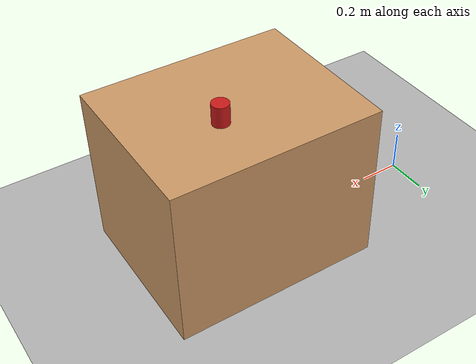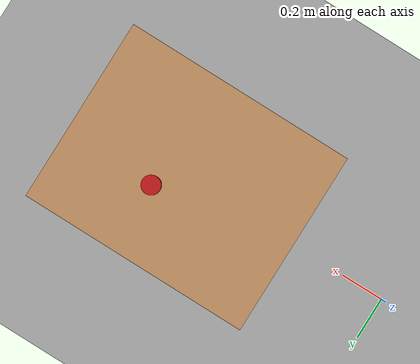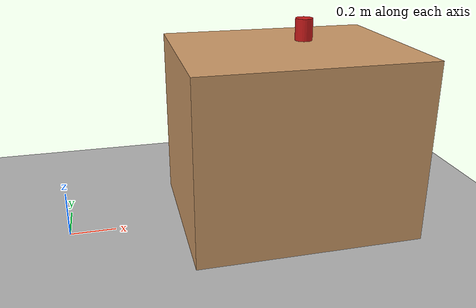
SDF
<?xml version="1.0" ?>
<sdf version="1.6">
  <world name="simple_world">
    <light name="sun" type="directional">
      <cast_shadows>1</cast_shadows>
      <pose>0 0 10 0 0 0</pose>
      <diffuse>0.8 0.8 0.8 1</diffuse>
      <specular>0.2 0.2 0.2 1</specular>
      <attenuation>
        <range>1000</range>
        <constant>0.9</constant>
        <linear>0.01</linear>
        <quadratic>0.001</quadratic>
      </attenuation>
      <direction>-0.6 0.4 -0.8</direction>
    </light>

    <model name="ground_plane">
      <static>true</static>
      <link name="link">
        <collision name="collision">
          <geometry>
            <plane>
              <normal>0 0 1</normal>
              <size>100 100</size>
            </plane>
          </geometry>
          <surface>
            <friction>
              <ode>
                <mu>1.0</mu>
                <mu2>1.0</mu2>
              </ode>
            </friction>
          </surface>
        </collision>
        <visual name="visual">
          <geometry>
            <plane>
              <normal>0 0 1</normal>
              <size>100 100</size>
            </plane>
          </geometry>
          <material>
            <ambient>0.7 0.7 0.7 1</ambient>
            <diffuse>0.7 0.7 0.7 1</diffuse>
            <specular>0.7 0.7 0.7 1</specular>
          </material>
        </visual>
      </link>
    </model>

    <!-- Add a simple table for the "pick up the red cup" task -->
    <model name="table">
      <pose>1 0 0 0 0 0</pose>
      <link name="table_base">
        <pose>0 0 0.4 0 0 0</pose>
        <collision name="collision">
          <geometry>
            <box>
              <size>1.0 0.8 0.8</size>
            </box>
          </geometry>
        </collision>
        <visual name="visual">
          <geometry>
            <box>
              <size>1.0 0.8 0.8</size>
            </box>
          </geometry>
          <material>
            <ambient>0.8 0.6 0.4 1</ambient>
            <diffuse>0.8 0.6 0.4 1</diffuse>
            <specular>0.8 0.6 0.4 1</specular>
          </material>
        </visual>
        <inertial>
          <mass>50.0</mass>
          <inertia>
            <ixx>0.416667</ixx>
            <ixy>0</ixy>
            <ixz>0</ixz>
            <iyy>0.541667</iyy>
            <iyz>0</iyz>
            <izz>0.125</izz>
          </inertia>
        </inertial>
      </link>
      <static>true</static>
    </model>

    <!-- Add a simple red cup for the task -->
    <model name="red_cup">
      <pose>1.1 0.1 0.85 0 0 0</pose>
      <link name="cup_body">
        <collision name="collision">
          <geometry>
            <cylinder>
              <radius>0.04</radius>
              <length>0.1</length>
            </cylinder>
          </geometry>
        </collision>
        <visual name="visual">
          <geometry>
            <cylinder>
              <radius>0.04</radius>
              <length>0.1</length>
            </cylinder>
          </geometry>
          <material>
            <ambient>0.8 0.1 0.1 1</ambient>
            <diffuse>0.8 0.1 0.1 1</diffuse>
            <specular>0.8 0.1 0.1 1</specular>
          </material>
        </visual>
        <inertial>
          <mass>0.2</mass>
          <inertia>
            <ixx>0.000267</ixx>
            <ixy>0</ixy>
            <ixz>0</ixz>
            <iyy>0.000267</iyy>
            <iyz>0</iyz>
            <izz>0.00016</izz>
          </inertia>
        </inertial>
      </link>
    </model>

    <physics name="default_physics" default="0" type="ode">
      <max_step_size>0.001</max_step_size>
      <real_time_factor>1</real_time_factor>
      <real_time_update_rate>1000</real_time_update_rate>
    </physics>

    <scene>
      <ambient>0.4 0.4 0.4 1</ambient>
      <background>0.7 0.7 0.7 1</background>
    </scene>
  </world>
</sdf>
